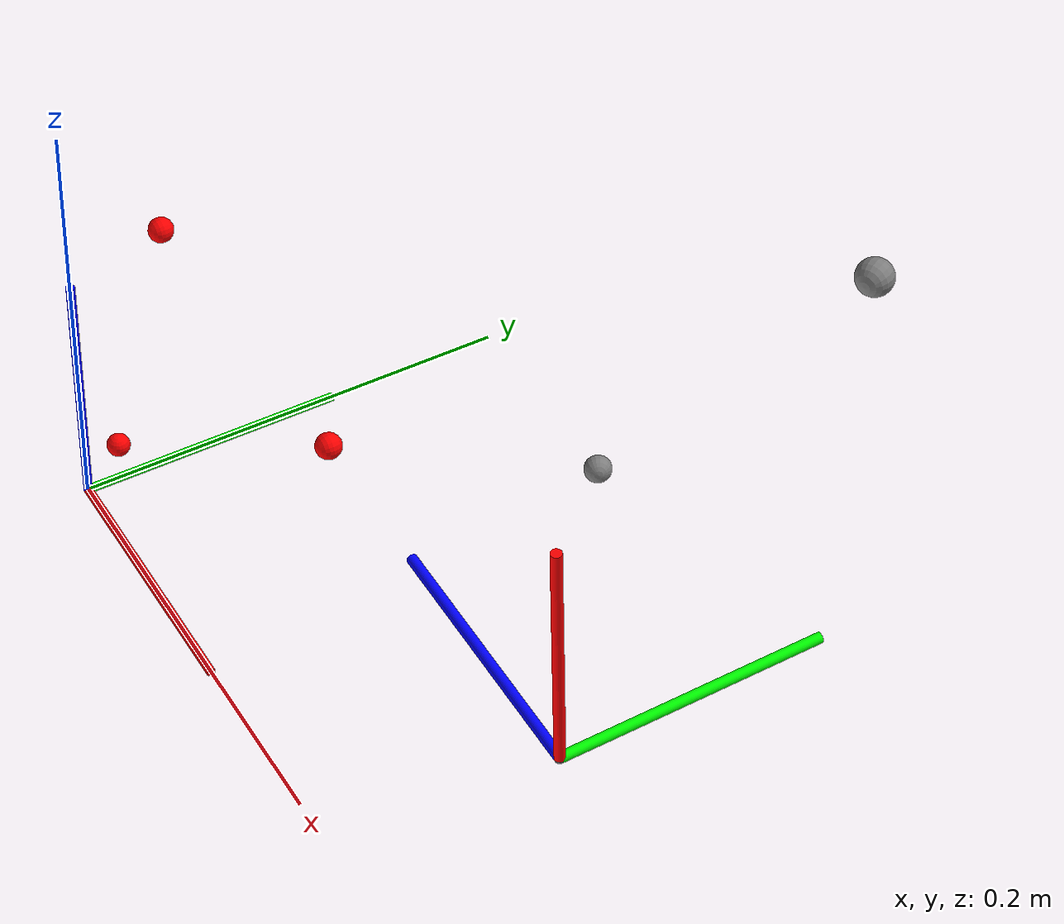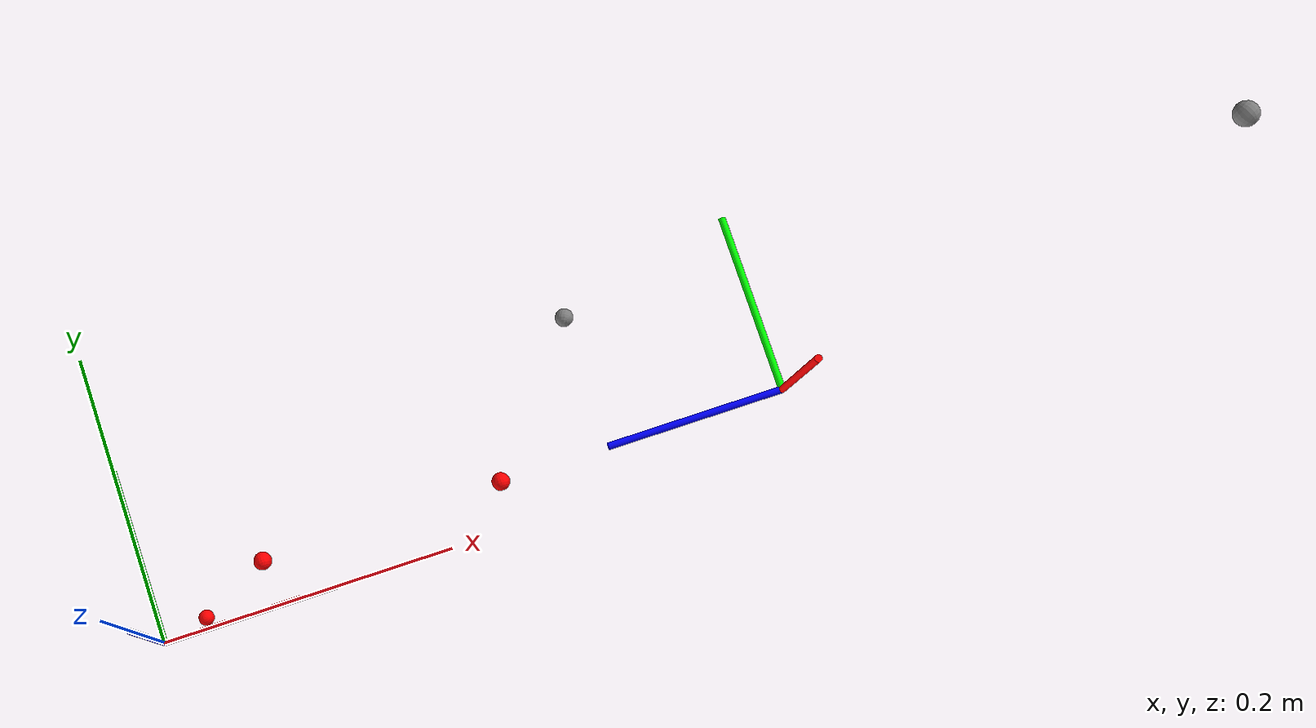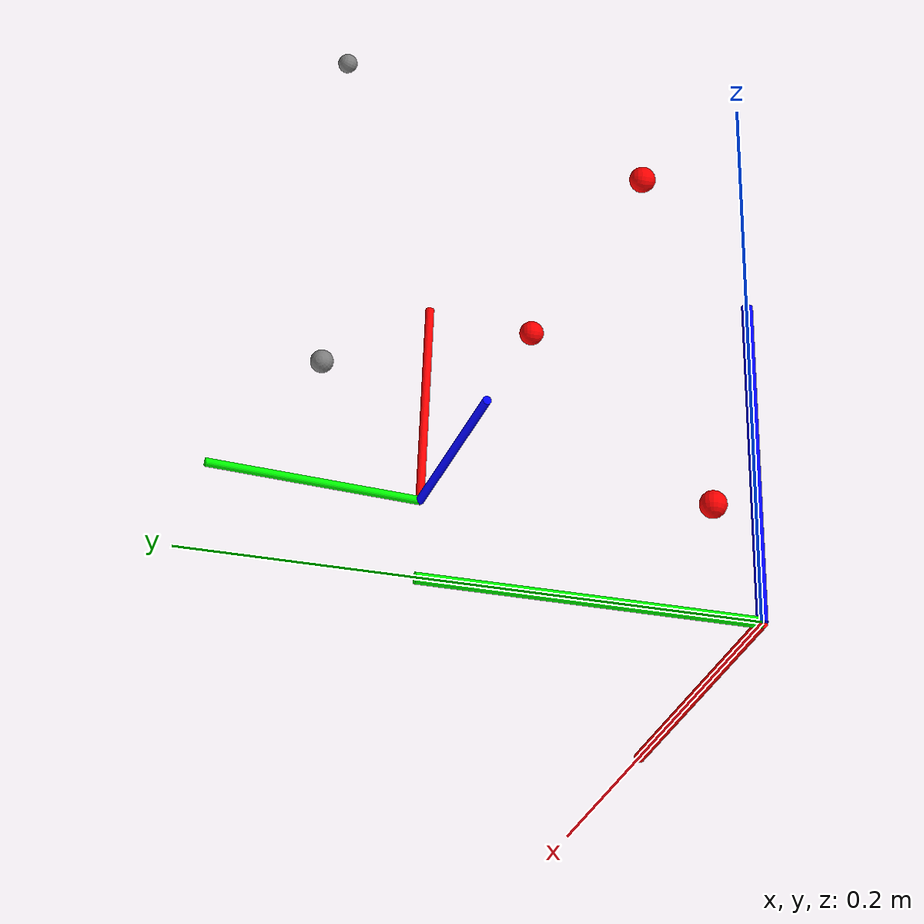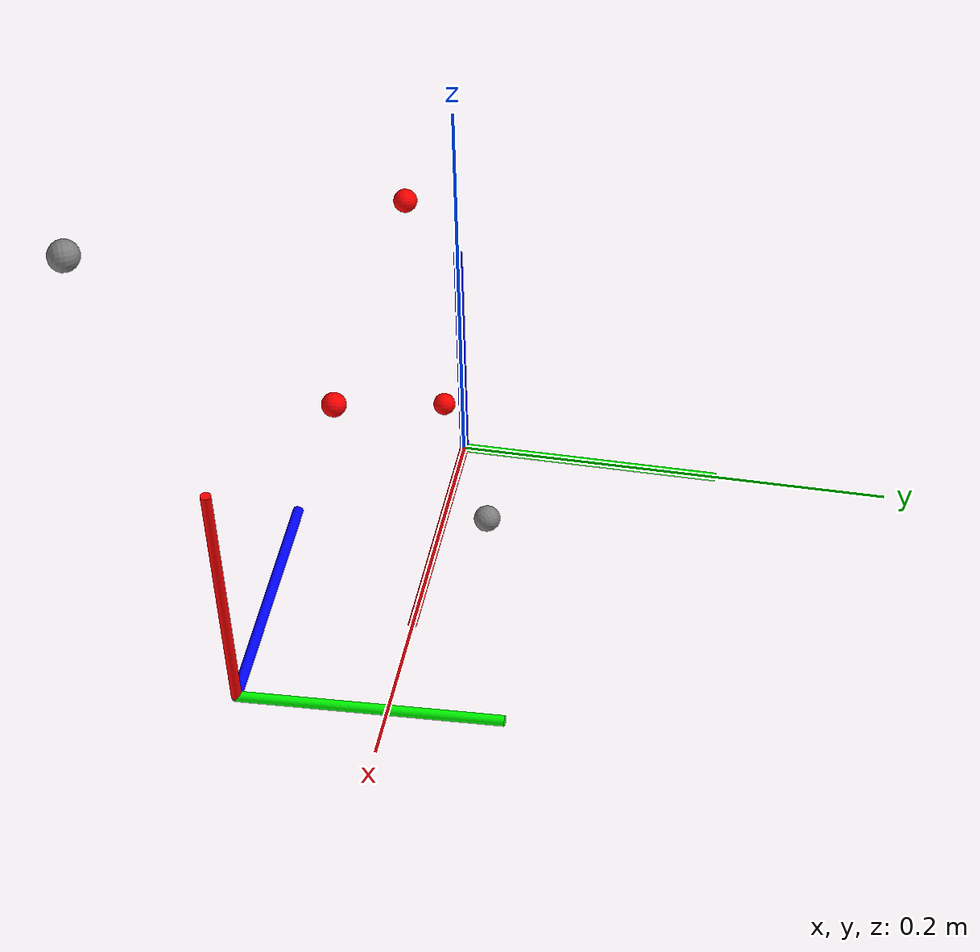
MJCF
<mujoco model="so101_description">
  <compiler angle="radian" />

  <default>
    <default class="so101_new_calib">
      <default class="visual">
        <geom type="mesh" contype="0" conaffinity="0" group="2" />
      </default>
      <default class="collision">
        <geom group="3" />
        <default class="finger_collision">
          <geom type="box" solimp="0 1 0.001 0.02 3" solref="0.001 1" friction="2 0.05 0.05" />
        </default>
      </default>
    </default>
    <default class="sts3215">
      <geom contype="0" conaffinity="0" />
      <joint damping="0.60" frictionloss="0.052" armature="0.028" />
      <position kp="50" dampratio="1" />
    </default>
  </default>

  <worldbody>
    <body name="base" pos="0 0 0" childclass="so101_new_calib">
      <geom type="cylinder" size="0.002 0.06" rgba="1 0 0 1" pos="0.06 0.0 0.0" euler="0 1.57079 0" class="visual" />
      <geom type="cylinder" size="0.002 0.06" rgba="0 1 0 1" pos="0.0 0.06 0.0" euler="1.57079 0 0" class="visual" />
      <geom type="cylinder" size="0.002 0.06" rgba="0 0 1 1" pos="0.0 0.0 0.06" euler="0 0 0" class="visual" />

      <inertial pos="0.0137179 -5.19711e-05 0.0334843" mass="0.147" fullinertia="0.000114686 0.000136117 0.000130364 -4.59787e-07 4.97151e-06 9.75275e-08" />

      <body name="shoulder" pos="0.0388353 -8.97657e-09 0.0624" quat="3.56167e-16 1.22818e-15 -1 -4.14635e-16">
        <site name="shoulderSite" pos="0.0 0 0.0" rgba="1 0 0 1" />

        <joint axis="0 0 1" name="shoulder_pan" type="hinge" range="-1.9198621771937616 1.9198621771937634" class="sts3215" />
        <inertial pos="-0.0307604 -1.66727e-05 -0.0252713" mass="0.100006" fullinertia="8.3759e-05 8.10403e-05 2.39783e-05 7.55525e-08 -1.16342e-06 1.54663e-07" />

        <body name="upper_arm" pos="-0.0303992 -0.0182778 -0.0542" quat="0.5 -0.5 -0.5 -0.5">
          <joint axis="0 0 1" name="shoulder_lift" type="hinge" range="-1.7453292519943224 1.7453292519943366" class="sts3215" />
          <inertial pos="-0.0898471 -0.00838224 0.0184089" mass="0.103" fullinertia="4.08002e-05 0.000147318 0.000142487 -1.97819e-05 -4.03016e-08 8.97326e-09" />

          <body name="lower_arm" pos="-0.11257 -0.028 1.73763e-16" quat="0.707107 -5.98613e-17 -2.58051e-17 0.707107">
            <site name="elbowSite" pos="0.0 0. 0.0182778" rgba="1 0 0 1" />

            <joint axis="0 0 1" name="elbow_flex" type="hinge" range="-1.69 1.69" class="sts3215" />
            <inertial pos="-0.0980701 0.00324376 0.0182831" mass="0.104" fullinertia="2.87438e-05 0.000159844 0.00014529 7.41152e-06 1.26409e-06 -4.90188e-08" />

            <body name="wrist" pos="-0.1349 0.0052 3.62355e-17" quat="0.707107 9.58722e-16 -7.51313e-16 -0.707107">
              <site name="wristSite" pos="0.0 0 0.0182778" rgba="1 0 0 1" />

              <joint axis="0 0 1" name="wrist_flex" type="hinge" range="-1.6580628494556928 1.6580627293335335" class="sts3215" />
              <inertial pos="-0.000103312 -0.0386143 0.0281156" mass="0.079" fullinertia="3.68263e-05 2.5391e-05 2.1e-05 1.7893e-08 -5.28128e-08 3.6412e-06" />

              <body name="gripper" pos="5.55112e-17 -0.0611 0.0181" quat="0.0172091 -0.0172091 0.706897 0.706897">
                <joint axis="0 0 1" name="wrist_roll" type="hinge" range="-2.7438472969992493 2.841206309382605" class="sts3215" />
                <inertial pos="0.000213627 0.000245138 -0.025187" mass="0.087" fullinertia="2.75087e-05 4.33657e-05 3.45059e-05 -3.35241e-07 -5.7352e-06 -5.17847e-08" />

                <body name="camera_orientation_bias" pos="-.005 .0244 -.024" euler="-1.57079 0 1.57079">
                  <body name="camera_wrist_mount" pos="-.0245 -.0085 .0495" euler="2.505 -2.13 0.87079">
                    <site name="camera_wrist" />
                  </body>
                </body>

                <site name="EE" size="0.002" pos="0.0 0.0 -0.1" euler="0 0 1.57079" />
                <geom type="cylinder" size="0.002 0.05" rgba="1 0 0 1" pos="0.05 -0.0 -0.1" euler="0 1.57079 0" class="visual" />
                <geom type="cylinder" size="0.002 0.05" rgba="0 1 0 1" pos="0 0.05 -0.1" euler="1.57079 0 0" class="visual" />
                <geom type="cylinder" size="0.002 0.05" rgba="0 0 1 1" pos="0 -0.0 -0.05" euler="0 0 0" class="visual" />

              </body>
            </body>
          </body>
        </body>
      </body>

      <body name="camera_front_mount" pos="0.523000 0.000000 0.552000" euler="-1.570803 -0.436790 3.141590">
        <site name="camera_front" />
      </body>

    </body>
  </worldbody>

  <actuator>
    <position class="sts3215" name="shoulder_pan" joint="shoulder_pan" forcerange="-3.35 3.35" ctrlrange="-1.91986 1.91986" />
    <position class="sts3215" name="shoulder_lift" joint="shoulder_lift" forcerange="-3.35 3.35" ctrlrange="-1.74533 1.74533" />
    <position class="sts3215" name="elbow_flex" joint="elbow_flex" forcerange="-3.35 3.35" ctrlrange="-1.69 1.69" />
    <position class="sts3215" name="wrist_flex" joint="wrist_flex" forcerange="-3.35 3.35" ctrlrange="-1.65806 1.65806" />
    <position class="sts3215" name="wrist_roll" joint="wrist_roll" forcerange="-3.35 3.35" ctrlrange="-2.74385 2.84121" />
  </actuator>

  <keyframe>
    <key name="home" qpos="0 -1.57079 0 0 0" />
    <key name="standby1" qpos="0 0 0 1.57079 -1.57079" />
    <key name="standby2" qpos="0 0 0 1.57079 -1.57079" />
    <key name="rest" qpos="0 -1.75 1.57 1.18 0" />
  </keyframe>

</mujoco>
